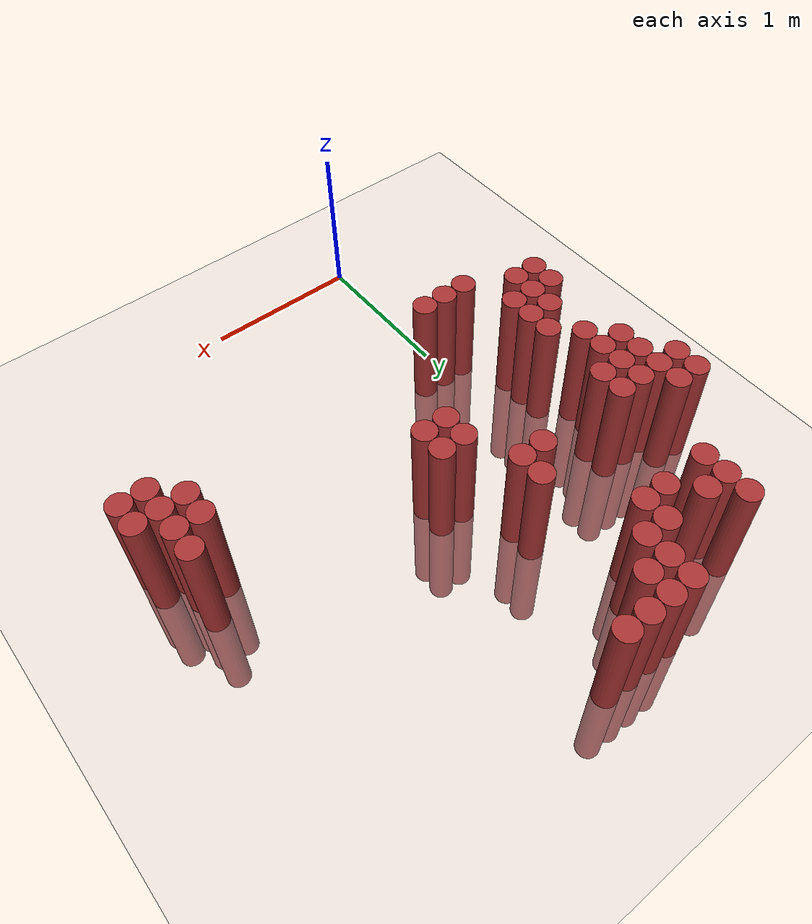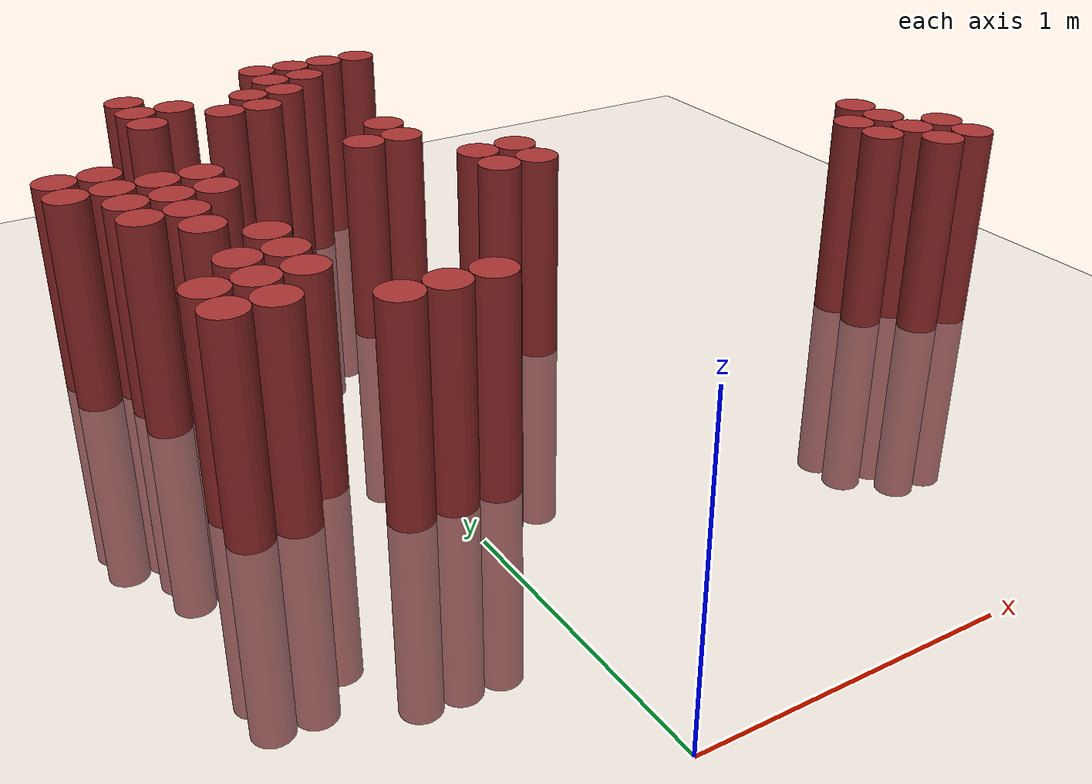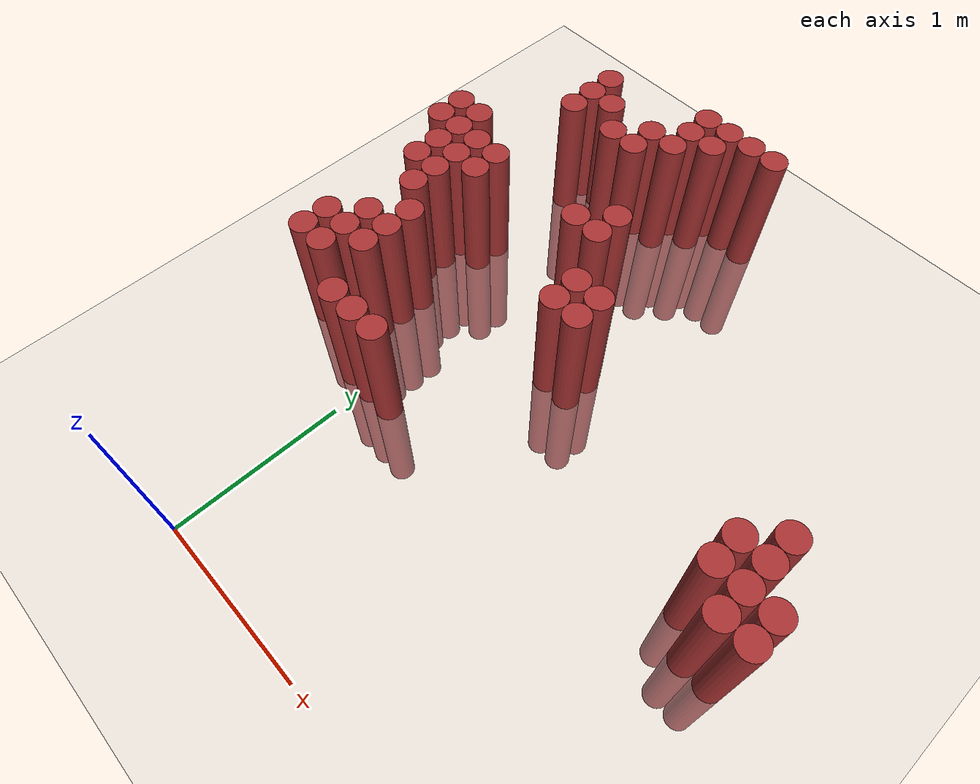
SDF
<sdf version="1.6">
 <world name="default">
  <model name="ground_plane">
   <static>1</static>
   <link name="link">
    <collision name="collision">
     <geometry><plane><normal>0 0 1</normal><size>100 100</size></plane></geometry>
     <surface><friction><ode><mu>100</mu><mu2>50</mu2></ode></friction></surface>
    </collision>
    <visual name="visual">
     <cast_shadows>0</cast_shadows>
     <geometry><plane><normal>0 0 1</normal><size>100 100</size></plane></geometry>
     <material>
      <script><uri>file://media/materials/scripts/gazebo.material</uri><name>Gazebo/Grey</name></script>
     </material>
    </visual>
   </link>
  </model>
  <model name="unit_cylinder_428">
   <static>1</static>
   <pose>-0.725000 2.425000 0.000000 0.000000 0.000000 0.000000</pose>
   <link name="link">
    <inertial>
     <mass>1</mass>
     <inertia><ixx>0.145833</ixx><ixy>0</ixy><ixz>0</ixz><iyy>0.145833</iyy><iyz>0</iyz><izz>0.125</izz></inertia>
    </inertial>
    <collision name="collision">
     <geometry><cylinder><radius>0.075000</radius><length>1.5</length></cylinder></geometry>
    </collision>
    <visual name="visual">
     <geometry><cylinder><radius>0.075000</radius><length>1.5</length></cylinder></geometry>
     <material>
      <ambient>0.648000 0.192000 0.192000 1</ambient>
      <diffuse>0.648000 0.192000 0.192000 1</diffuse>
     </material>
     <material>
      <script><name>Gazebo/Grey</name><uri>file://media/materials/scripts/gazebo.material</uri></script>
     </material>
    </visual>
   </link>
  </model>
  <model name="unit_cylinder_429">
   <static>1</static>
   <pose>-0.725000 2.575000 0.000000 0.000000 0.000000 0.000000</pose>
   <link name="link">
    <inertial>
     <mass>1</mass>
     <inertia><ixx>0.145833</ixx><ixy>0</ixy><ixz>0</ixz><iyy>0.145833</iyy><iyz>0</iyz><izz>0.125</izz></inertia>
    </inertial>
    <collision name="collision">
     <geometry><cylinder><radius>0.075000</radius><length>1.5</length></cylinder></geometry>
    </collision>
    <visual name="visual">
     <geometry><cylinder><radius>0.075000</radius><length>1.5</length></cylinder></geometry>
     <material>
      <ambient>0.648000 0.192000 0.192000 1</ambient>
      <diffuse>0.648000 0.192000 0.192000 1</diffuse>
     </material>
     <material>
      <script><name>Gazebo/Grey</name><uri>file://media/materials/scripts/gazebo.material</uri></script>
     </material>
    </visual>
   </link>
  </model>
  <model name="unit_cylinder_434">
   <static>1</static>
   <pose>-0.575000 1.375000 0.000000 0.000000 0.000000 0.000000</pose>
   <link name="link">
    <inertial>
     <mass>1</mass>
     <inertia><ixx>0.145833</ixx><ixy>0</ixy><ixz>0</ixz><iyy>0.145833</iyy><iyz>0</iyz><izz>0.125</izz></inertia>
    </inertial>
    <collision name="collision">
     <geometry><cylinder><radius>0.075000</radius><length>1.5</length></cylinder></geometry>
    </collision>
    <visual name="visual">
     <geometry><cylinder><radius>0.075000</radius><length>1.5</length></cylinder></geometry>
     <material>
      <ambient>0.648000 0.192000 0.192000 1</ambient>
      <diffuse>0.648000 0.192000 0.192000 1</diffuse>
     </material>
     <material>
      <script><name>Gazebo/Grey</name><uri>file://media/materials/scripts/gazebo.material</uri></script>
     </material>
    </visual>
   </link>
  </model>
  <model name="unit_cylinder_435">
   <static>1</static>
   <pose>-0.575000 1.525000 0.000000 0.000000 0.000000 0.000000</pose>
   <link name="link">
    <inertial>
     <mass>1</mass>
     <inertia><ixx>0.145833</ixx><ixy>0</ixy><ixz>0</ixz><iyy>0.145833</iyy><iyz>0</iyz><izz>0.125</izz></inertia>
    </inertial>
    <collision name="collision">
     <geometry><cylinder><radius>0.075000</radius><length>1.5</length></cylinder></geometry>
    </collision>
    <visual name="visual">
     <geometry><cylinder><radius>0.075000</radius><length>1.5</length></cylinder></geometry>
     <material>
      <ambient>0.648000 0.192000 0.192000 1</ambient>
      <diffuse>0.648000 0.192000 0.192000 1</diffuse>
     </material>
     <material>
      <script><name>Gazebo/Grey</name><uri>file://media/materials/scripts/gazebo.material</uri></script>
     </material>
    </visual>
   </link>
  </model>
  <model name="unit_cylinder_436">
   <static>1</static>
   <pose>-0.575000 2.125000 0.000000 0.000000 0.000000 0.000000</pose>
   <link name="link">
    <inertial>
     <mass>1</mass>
     <inertia><ixx>0.145833</ixx><ixy>0</ixy><ixz>0</ixz><iyy>0.145833</iyy><iyz>0</iyz><izz>0.125</izz></inertia>
    </inertial>
    <collision name="collision">
     <geometry><cylinder><radius>0.075000</radius><length>1.5</length></cylinder></geometry>
    </collision>
    <visual name="visual">
     <geometry><cylinder><radius>0.075000</radius><length>1.5</length></cylinder></geometry>
     <material>
      <ambient>0.648000 0.192000 0.192000 1</ambient>
      <diffuse>0.648000 0.192000 0.192000 1</diffuse>
     </material>
     <material>
      <script><name>Gazebo/Grey</name><uri>file://media/materials/scripts/gazebo.material</uri></script>
     </material>
    </visual>
   </link>
  </model>
  <model name="unit_cylinder_437">
   <static>1</static>
   <pose>-0.575000 2.275000 0.000000 0.000000 0.000000 0.000000</pose>
   <link name="link">
    <inertial>
     <mass>1</mass>
     <inertia><ixx>0.145833</ixx><ixy>0</ixy><ixz>0</ixz><iyy>0.145833</iyy><iyz>0</iyz><izz>0.125</izz></inertia>
    </inertial>
    <collision name="collision">
     <geometry><cylinder><radius>0.075000</radius><length>1.5</length></cylinder></geometry>
    </collision>
    <visual name="visual">
     <geometry><cylinder><radius>0.075000</radius><length>1.5</length></cylinder></geometry>
     <material>
      <ambient>0.648000 0.192000 0.192000 1</ambient>
      <diffuse>0.648000 0.192000 0.192000 1</diffuse>
     </material>
     <material>
      <script><name>Gazebo/Grey</name><uri>file://media/materials/scripts/gazebo.material</uri></script>
     </material>
    </visual>
   </link>
  </model>
  <model name="unit_cylinder_438">
   <static>1</static>
   <pose>-0.575000 2.425000 0.000000 0.000000 0.000000 0.000000</pose>
   <link name="link">
    <inertial>
     <mass>1</mass>
     <inertia><ixx>0.145833</ixx><ixy>0</ixy><ixz>0</ixz><iyy>0.145833</iyy><iyz>0</iyz><izz>0.125</izz></inertia>
    </inertial>
    <collision name="collision">
     <geometry><cylinder><radius>0.075000</radius><length>1.5</length></cylinder></geometry>
    </collision>
    <visual name="visual">
     <geometry><cylinder><radius>0.075000</radius><length>1.5</length></cylinder></geometry>
     <material>
      <ambient>0.648000 0.192000 0.192000 1</ambient>
      <diffuse>0.648000 0.192000 0.192000 1</diffuse>
     </material>
     <material>
      <script><name>Gazebo/Grey</name><uri>file://media/materials/scripts/gazebo.material</uri></script>
     </material>
    </visual>
   </link>
  </model>
  <model name="unit_cylinder_439">
   <static>1</static>
   <pose>-0.575000 2.575000 0.000000 0.000000 0.000000 0.000000</pose>
   <link name="link">
    <inertial>
     <mass>1</mass>
     <inertia><ixx>0.145833</ixx><ixy>0</ixy><ixz>0</ixz><iyy>0.145833</iyy><iyz>0</iyz><izz>0.125</izz></inertia>
    </inertial>
    <collision name="collision">
     <geometry><cylinder><radius>0.075000</radius><length>1.5</length></cylinder></geometry>
    </collision>
    <visual name="visual">
     <geometry><cylinder><radius>0.075000</radius><length>1.5</length></cylinder></geometry>
     <material>
      <ambient>0.648000 0.192000 0.192000 1</ambient>
      <diffuse>0.648000 0.192000 0.192000 1</diffuse>
     </material>
     <material>
      <script><name>Gazebo/Grey</name><uri>file://media/materials/scripts/gazebo.material</uri></script>
     </material>
    </visual>
   </link>
  </model>
  <model name="unit_cylinder_446">
   <static>1</static>
   <pose>-0.425000 1.375000 0.000000 0.000000 0.000000 0.000000</pose>
   <link name="link">
    <inertial>
     <mass>1</mass>
     <inertia><ixx>0.145833</ixx><ixy>0</ixy><ixz>0</ixz><iyy>0.145833</iyy><iyz>0</iyz><izz>0.125</izz></inertia>
    </inertial>
    <collision name="collision">
     <geometry><cylinder><radius>0.075000</radius><length>1.5</length></cylinder></geometry>
    </collision>
    <visual name="visual">
     <geometry><cylinder><radius>0.075000</radius><length>1.5</length></cylinder></geometry>
     <material>
      <ambient>0.648000 0.192000 0.192000 1</ambient>
      <diffuse>0.648000 0.192000 0.192000 1</diffuse>
     </material>
     <material>
      <script><name>Gazebo/Grey</name><uri>file://media/materials/scripts/gazebo.material</uri></script>
     </material>
    </visual>
   </link>
  </model>
  <model name="unit_cylinder_447">
   <static>1</static>
   <pose>-0.425000 1.525000 0.000000 0.000000 0.000000 0.000000</pose>
   <link name="link">
    <inertial>
     <mass>1</mass>
     <inertia><ixx>0.145833</ixx><ixy>0</ixy><ixz>0</ixz><iyy>0.145833</iyy><iyz>0</iyz><izz>0.125</izz></inertia>
    </inertial>
    <collision name="collision">
     <geometry><cylinder><radius>0.075000</radius><length>1.5</length></cylinder></geometry>
    </collision>
    <visual name="visual">
     <geometry><cylinder><radius>0.075000</radius><length>1.5</length></cylinder></geometry>
     <material>
      <ambient>0.648000 0.192000 0.192000 1</ambient>
      <diffuse>0.648000 0.192000 0.192000 1</diffuse>
     </material>
     <material>
      <script><name>Gazebo/Grey</name><uri>file://media/materials/scripts/gazebo.material</uri></script>
     </material>
    </visual>
   </link>
  </model>
  <model name="unit_cylinder_448">
   <static>1</static>
   <pose>-0.425000 1.675000 0.000000 0.000000 0.000000 0.000000</pose>
   <link name="link">
    <inertial>
     <mass>1</mass>
     <inertia><ixx>0.145833</ixx><ixy>0</ixy><ixz>0</ixz><iyy>0.145833</iyy><iyz>0</iyz><izz>0.125</izz></inertia>
    </inertial>
    <collision name="collision">
     <geometry><cylinder><radius>0.075000</radius><length>1.5</length></cylinder></geometry>
    </collision>
    <visual name="visual">
     <geometry><cylinder><radius>0.075000</radius><length>1.5</length></cylinder></geometry>
     <material>
      <ambient>0.648000 0.192000 0.192000 1</ambient>
      <diffuse>0.648000 0.192000 0.192000 1</diffuse>
     </material>
     <material>
      <script><name>Gazebo/Grey</name><uri>file://media/materials/scripts/gazebo.material</uri></script>
     </material>
    </visual>
   </link>
  </model>
  <model name="unit_cylinder_449">
   <static>1</static>
   <pose>-0.425000 1.975000 0.000000 0.000000 0.000000 0.000000</pose>
   <link name="link">
    <inertial>
     <mass>1</mass>
     <inertia><ixx>0.145833</ixx><ixy>0</ixy><ixz>0</ixz><iyy>0.145833</iyy><iyz>0</iyz><izz>0.125</izz></inertia>
    </inertial>
    <collision name="collision">
     <geometry><cylinder><radius>0.075000</radius><length>1.5</length></cylinder></geometry>
    </collision>
    <visual name="visual">
     <geometry><cylinder><radius>0.075000</radius><length>1.5</length></cylinder></geometry>
     <material>
      <ambient>0.648000 0.192000 0.192000 1</ambient>
      <diffuse>0.648000 0.192000 0.192000 1</diffuse>
     </material>
     <material>
      <script><name>Gazebo/Grey</name><uri>file://media/materials/scripts/gazebo.material</uri></script>
     </material>
    </visual>
   </link>
  </model>
  <model name="unit_cylinder_450">
   <static>1</static>
   <pose>-0.425000 2.125000 0.000000 0.000000 0.000000 0.000000</pose>
   <link name="link">
    <inertial>
     <mass>1</mass>
     <inertia><ixx>0.145833</ixx><ixy>0</ixy><ixz>0</ixz><iyy>0.145833</iyy><iyz>0</iyz><izz>0.125</izz></inertia>
    </inertial>
    <collision name="collision">
     <geometry><cylinder><radius>0.075000</radius><length>1.5</length></cylinder></geometry>
    </collision>
    <visual name="visual">
     <geometry><cylinder><radius>0.075000</radius><length>1.5</length></cylinder></geometry>
     <material>
      <ambient>0.648000 0.192000 0.192000 1</ambient>
      <diffuse>0.648000 0.192000 0.192000 1</diffuse>
     </material>
     <material>
      <script><name>Gazebo/Grey</name><uri>file://media/materials/scripts/gazebo.material</uri></script>
     </material>
    </visual>
   </link>
  </model>
  <model name="unit_cylinder_451">
   <static>1</static>
   <pose>-0.425000 2.275000 0.000000 0.000000 0.000000 0.000000</pose>
   <link name="link">
    <inertial>
     <mass>1</mass>
     <inertia><ixx>0.145833</ixx><ixy>0</ixy><ixz>0</ixz><iyy>0.145833</iyy><iyz>0</iyz><izz>0.125</izz></inertia>
    </inertial>
    <collision name="collision">
     <geometry><cylinder><radius>0.075000</radius><length>1.5</length></cylinder></geometry>
    </collision>
    <visual name="visual">
     <geometry><cylinder><radius>0.075000</radius><length>1.5</length></cylinder></geometry>
     <material>
      <ambient>0.648000 0.192000 0.192000 1</ambient>
      <diffuse>0.648000 0.192000 0.192000 1</diffuse>
     </material>
     <material>
      <script><name>Gazebo/Grey</name><uri>file://media/materials/scripts/gazebo.material</uri></script>
     </material>
    </visual>
   </link>
  </model>
  <model name="unit_cylinder_452">
   <static>1</static>
   <pose>-0.425000 2.425000 0.000000 0.000000 0.000000 0.000000</pose>
   <link name="link">
    <inertial>
     <mass>1</mass>
     <inertia><ixx>0.145833</ixx><ixy>0</ixy><ixz>0</ixz><iyy>0.145833</iyy><iyz>0</iyz><izz>0.125</izz></inertia>
    </inertial>
    <collision name="collision">
     <geometry><cylinder><radius>0.075000</radius><length>1.5</length></cylinder></geometry>
    </collision>
    <visual name="visual">
     <geometry><cylinder><radius>0.075000</radius><length>1.5</length></cylinder></geometry>
     <material>
      <ambient>0.648000 0.192000 0.192000 1</ambient>
      <diffuse>0.648000 0.192000 0.192000 1</diffuse>
     </material>
     <material>
      <script><name>Gazebo/Grey</name><uri>file://media/materials/scripts/gazebo.material</uri></script>
     </material>
    </visual>
   </link>
  </model>
  <model name="unit_cylinder_460">
   <static>1</static>
   <pose>-0.275000 1.525000 0.000000 0.000000 0.000000 0.000000</pose>
   <link name="link">
    <inertial>
     <mass>1</mass>
     <inertia><ixx>0.145833</ixx><ixy>0</ixy><ixz>0</ixz><iyy>0.145833</iyy><iyz>0</iyz><izz>0.125</izz></inertia>
    </inertial>
    <collision name="collision">
     <geometry><cylinder><radius>0.075000</radius><length>1.5</length></cylinder></geometry>
    </collision>
    <visual name="visual">
     <geometry><cylinder><radius>0.075000</radius><length>1.5</length></cylinder></geometry>
     <material>
      <ambient>0.648000 0.192000 0.192000 1</ambient>
      <diffuse>0.648000 0.192000 0.192000 1</diffuse>
     </material>
     <material>
      <script><name>Gazebo/Grey</name><uri>file://media/materials/scripts/gazebo.material</uri></script>
     </material>
    </visual>
   </link>
  </model>
  <model name="unit_cylinder_461">
   <static>1</static>
   <pose>-0.275000 1.675000 0.000000 0.000000 0.000000 0.000000</pose>
   <link name="link">
    <inertial>
     <mass>1</mass>
     <inertia><ixx>0.145833</ixx><ixy>0</ixy><ixz>0</ixz><iyy>0.145833</iyy><iyz>0</iyz><izz>0.125</izz></inertia>
    </inertial>
    <collision name="collision">
     <geometry><cylinder><radius>0.075000</radius><length>1.5</length></cylinder></geometry>
    </collision>
    <visual name="visual">
     <geometry><cylinder><radius>0.075000</radius><length>1.5</length></cylinder></geometry>
     <material>
      <ambient>0.648000 0.192000 0.192000 1</ambient>
      <diffuse>0.648000 0.192000 0.192000 1</diffuse>
     </material>
     <material>
      <script><name>Gazebo/Grey</name><uri>file://media/materials/scripts/gazebo.material</uri></script>
     </material>
    </visual>
   </link>
  </model>
  <model name="unit_cylinder_462">
   <static>1</static>
   <pose>-0.275000 1.825000 0.000000 0.000000 0.000000 0.000000</pose>
   <link name="link">
    <inertial>
     <mass>1</mass>
     <inertia><ixx>0.145833</ixx><ixy>0</ixy><ixz>0</ixz><iyy>0.145833</iyy><iyz>0</iyz><izz>0.125</izz></inertia>
    </inertial>
    <collision name="collision">
     <geometry><cylinder><radius>0.075000</radius><length>1.5</length></cylinder></geometry>
    </collision>
    <visual name="visual">
     <geometry><cylinder><radius>0.075000</radius><length>1.5</length></cylinder></geometry>
     <material>
      <ambient>0.648000 0.192000 0.192000 1</ambient>
      <diffuse>0.648000 0.192000 0.192000 1</diffuse>
     </material>
     <material>
      <script><name>Gazebo/Grey</name><uri>file://media/materials/scripts/gazebo.material</uri></script>
     </material>
    </visual>
   </link>
  </model>
  <model name="unit_cylinder_463">
   <static>1</static>
   <pose>-0.275000 2.275000 0.000000 0.000000 0.000000 0.000000</pose>
   <link name="link">
    <inertial>
     <mass>1</mass>
     <inertia><ixx>0.145833</ixx><ixy>0</ixy><ixz>0</ixz><iyy>0.145833</iyy><iyz>0</iyz><izz>0.125</izz></inertia>
    </inertial>
    <collision name="collision">
     <geometry><cylinder><radius>0.075000</radius><length>1.5</length></cylinder></geometry>
    </collision>
    <visual name="visual">
     <geometry><cylinder><radius>0.075000</radius><length>1.5</length></cylinder></geometry>
     <material>
      <ambient>0.648000 0.192000 0.192000 1</ambient>
      <diffuse>0.648000 0.192000 0.192000 1</diffuse>
     </material>
     <material>
      <script><name>Gazebo/Grey</name><uri>file://media/materials/scripts/gazebo.material</uri></script>
     </material>
    </visual>
   </link>
  </model>
  <model name="unit_cylinder_464">
   <static>1</static>
   <pose>-0.275000 2.425000 0.000000 0.000000 0.000000 0.000000</pose>
   <link name="link">
    <inertial>
     <mass>1</mass>
     <inertia><ixx>0.145833</ixx><ixy>0</ixy><ixz>0</ixz><iyy>0.145833</iyy><iyz>0</iyz><izz>0.125</izz></inertia>
    </inertial>
    <collision name="collision">
     <geometry><cylinder><radius>0.075000</radius><length>1.5</length></cylinder></geometry>
    </collision>
    <visual name="visual">
     <geometry><cylinder><radius>0.075000</radius><length>1.5</length></cylinder></geometry>
     <material>
      <ambient>0.648000 0.192000 0.192000 1</ambient>
      <diffuse>0.648000 0.192000 0.192000 1</diffuse>
     </material>
     <material>
      <script><name>Gazebo/Grey</name><uri>file://media/materials/scripts/gazebo.material</uri></script>
     </material>
    </visual>
   </link>
  </model>
  <model name="unit_cylinder_465">
   <static>1</static>
   <pose>-0.275000 3.025000 0.000000 0.000000 0.000000 0.000000</pose>
   <link name="link">
    <inertial>
     <mass>1</mass>
     <inertia><ixx>0.145833</ixx><ixy>0</ixy><ixz>0</ixz><iyy>0.145833</iyy><iyz>0</iyz><izz>0.125</izz></inertia>
    </inertial>
    <collision name="collision">
     <geometry><cylinder><radius>0.075000</radius><length>1.5</length></cylinder></geometry>
    </collision>
    <visual name="visual">
     <geometry><cylinder><radius>0.075000</radius><length>1.5</length></cylinder></geometry>
     <material>
      <ambient>0.648000 0.192000 0.192000 1</ambient>
      <diffuse>0.648000 0.192000 0.192000 1</diffuse>
     </material>
     <material>
      <script><name>Gazebo/Grey</name><uri>file://media/materials/scripts/gazebo.material</uri></script>
     </material>
    </visual>
   </link>
  </model>
  <model name="unit_cylinder_466">
   <static>1</static>
   <pose>-0.275000 3.175000 0.000000 0.000000 0.000000 0.000000</pose>
   <link name="link">
    <inertial>
     <mass>1</mass>
     <inertia><ixx>0.145833</ixx><ixy>0</ixy><ixz>0</ixz><iyy>0.145833</iyy><iyz>0</iyz><izz>0.125</izz></inertia>
    </inertial>
    <collision name="collision">
     <geometry><cylinder><radius>0.075000</radius><length>1.5</length></cylinder></geometry>
    </collision>
    <visual name="visual">
     <geometry><cylinder><radius>0.075000</radius><length>1.5</length></cylinder></geometry>
     <material>
      <ambient>0.648000 0.192000 0.192000 1</ambient>
      <diffuse>0.648000 0.192000 0.192000 1</diffuse>
     </material>
     <material>
      <script><name>Gazebo/Grey</name><uri>file://media/materials/scripts/gazebo.material</uri></script>
     </material>
    </visual>
   </link>
  </model>
  <model name="unit_cylinder_467">
   <static>1</static>
   <pose>-0.275000 3.325000 0.000000 0.000000 0.000000 0.000000</pose>
   <link name="link">
    <inertial>
     <mass>1</mass>
     <inertia><ixx>0.145833</ixx><ixy>0</ixy><ixz>0</ixz><iyy>0.145833</iyy><iyz>0</iyz><izz>0.125</izz></inertia>
    </inertial>
    <collision name="collision">
     <geometry><cylinder><radius>0.075000</radius><length>1.5</length></cylinder></geometry>
    </collision>
    <visual name="visual">
     <geometry><cylinder><radius>0.075000</radius><length>1.5</length></cylinder></geometry>
     <material>
      <ambient>0.648000 0.192000 0.192000 1</ambient>
      <diffuse>0.648000 0.192000 0.192000 1</diffuse>
     </material>
     <material>
      <script><name>Gazebo/Grey</name><uri>file://media/materials/scripts/gazebo.material</uri></script>
     </material>
    </visual>
   </link>
  </model>
  <model name="unit_cylinder_477">
   <static>1</static>
   <pose>-0.125000 1.225000 0.000000 0.000000 0.000000 0.000000</pose>
   <link name="link">
    <inertial>
     <mass>1</mass>
     <inertia><ixx>0.145833</ixx><ixy>0</ixy><ixz>0</ixz><iyy>0.145833</iyy><iyz>0</iyz><izz>0.125</izz></inertia>
    </inertial>
    <collision name="collision">
     <geometry><cylinder><radius>0.075000</radius><length>1.5</length></cylinder></geometry>
    </collision>
    <visual name="visual">
     <geometry><cylinder><radius>0.075000</radius><length>1.5</length></cylinder></geometry>
     <material>
      <ambient>0.648000 0.192000 0.192000 1</ambient>
      <diffuse>0.648000 0.192000 0.192000 1</diffuse>
     </material>
     <material>
      <script><name>Gazebo/Grey</name><uri>file://media/materials/scripts/gazebo.material</uri></script>
     </material>
    </visual>
   </link>
  </model>
  <model name="unit_cylinder_478">
   <static>1</static>
   <pose>-0.125000 3.175000 0.000000 0.000000 0.000000 0.000000</pose>
   <link name="link">
    <inertial>
     <mass>1</mass>
     <inertia><ixx>0.145833</ixx><ixy>0</ixy><ixz>0</ixz><iyy>0.145833</iyy><iyz>0</iyz><izz>0.125</izz></inertia>
    </inertial>
    <collision name="collision">
     <geometry><cylinder><radius>0.075000</radius><length>1.5</length></cylinder></geometry>
    </collision>
    <visual name="visual">
     <geometry><cylinder><radius>0.075000</radius><length>1.5</length></cylinder></geometry>
     <material>
      <ambient>0.648000 0.192000 0.192000 1</ambient>
      <diffuse>0.648000 0.192000 0.192000 1</diffuse>
     </material>
     <material>
      <script><name>Gazebo/Grey</name><uri>file://media/materials/scripts/gazebo.material</uri></script>
     </material>
    </visual>
   </link>
  </model>
  <model name="unit_cylinder_486">
   <static>1</static>
   <pose>0.025000 1.225000 0.000000 0.000000 0.000000 0.000000</pose>
   <link name="link">
    <inertial>
     <mass>1</mass>
     <inertia><ixx>0.145833</ixx><ixy>0</ixy><ixz>0</ixz><iyy>0.145833</iyy><iyz>0</iyz><izz>0.125</izz></inertia>
    </inertial>
    <collision name="collision">
     <geometry><cylinder><radius>0.075000</radius><length>1.5</length></cylinder></geometry>
    </collision>
    <visual name="visual">
     <geometry><cylinder><radius>0.075000</radius><length>1.5</length></cylinder></geometry>
     <material>
      <ambient>0.648000 0.192000 0.192000 1</ambient>
      <diffuse>0.648000 0.192000 0.192000 1</diffuse>
     </material>
     <material>
      <script><name>Gazebo/Grey</name><uri>file://media/materials/scripts/gazebo.material</uri></script>
     </material>
    </visual>
   </link>
  </model>
  <model name="unit_cylinder_487">
   <static>1</static>
   <pose>0.025000 3.025000 0.000000 0.000000 0.000000 0.000000</pose>
   <link name="link">
    <inertial>
     <mass>1</mass>
     <inertia><ixx>0.145833</ixx><ixy>0</ixy><ixz>0</ixz><iyy>0.145833</iyy><iyz>0</iyz><izz>0.125</izz></inertia>
    </inertial>
    <collision name="collision">
     <geometry><cylinder><radius>0.075000</radius><length>1.5</length></cylinder></geometry>
    </collision>
    <visual name="visual">
     <geometry><cylinder><radius>0.075000</radius><length>1.5</length></cylinder></geometry>
     <material>
      <ambient>0.648000 0.192000 0.192000 1</ambient>
      <diffuse>0.648000 0.192000 0.192000 1</diffuse>
     </material>
     <material>
      <script><name>Gazebo/Grey</name><uri>file://media/materials/scripts/gazebo.material</uri></script>
     </material>
    </visual>
   </link>
  </model>
  <model name="unit_cylinder_493">
   <static>1</static>
   <pose>0.175000 1.225000 0.000000 0.000000 0.000000 0.000000</pose>
   <link name="link">
    <inertial>
     <mass>1</mass>
     <inertia><ixx>0.145833</ixx><ixy>0</ixy><ixz>0</ixz><iyy>0.145833</iyy><iyz>0</iyz><izz>0.125</izz></inertia>
    </inertial>
    <collision name="collision">
     <geometry><cylinder><radius>0.075000</radius><length>1.5</length></cylinder></geometry>
    </collision>
    <visual name="visual">
     <geometry><cylinder><radius>0.075000</radius><length>1.5</length></cylinder></geometry>
     <material>
      <ambient>0.648000 0.192000 0.192000 1</ambient>
      <diffuse>0.648000 0.192000 0.192000 1</diffuse>
     </material>
     <material>
      <script><name>Gazebo/Grey</name><uri>file://media/materials/scripts/gazebo.material</uri></script>
     </material>
    </visual>
   </link>
  </model>
  <model name="unit_cylinder_494">
   <static>1</static>
   <pose>0.175000 3.025000 0.000000 0.000000 0.000000 0.000000</pose>
   <link name="link">
    <inertial>
     <mass>1</mass>
     <inertia><ixx>0.145833</ixx><ixy>0</ixy><ixz>0</ixz><iyy>0.145833</iyy><iyz>0</iyz><izz>0.125</izz></inertia>
    </inertial>
    <collision name="collision">
     <geometry><cylinder><radius>0.075000</radius><length>1.5</length></cylinder></geometry>
    </collision>
    <visual name="visual">
     <geometry><cylinder><radius>0.075000</radius><length>1.5</length></cylinder></geometry>
     <material>
      <ambient>0.648000 0.192000 0.192000 1</ambient>
      <diffuse>0.648000 0.192000 0.192000 1</diffuse>
     </material>
     <material>
      <script><name>Gazebo/Grey</name><uri>file://media/materials/scripts/gazebo.material</uri></script>
     </material>
    </visual>
   </link>
  </model>
  <model name="unit_cylinder_495">
   <static>1</static>
   <pose>0.175000 3.175000 0.000000 0.000000 0.000000 0.000000</pose>
   <link name="link">
    <inertial>
     <mass>1</mass>
     <inertia><ixx>0.145833</ixx><ixy>0</ixy><ixz>0</ixz><iyy>0.145833</iyy><iyz>0</iyz><izz>0.125</izz></inertia>
    </inertial>
    <collision name="collision">
     <geometry><cylinder><radius>0.075000</radius><length>1.5</length></cylinder></geometry>
    </collision>
    <visual name="visual">
     <geometry><cylinder><radius>0.075000</radius><length>1.5</length></cylinder></geometry>
     <material>
      <ambient>0.648000 0.192000 0.192000 1</ambient>
      <diffuse>0.648000 0.192000 0.192000 1</diffuse>
     </material>
     <material>
      <script><name>Gazebo/Grey</name><uri>file://media/materials/scripts/gazebo.material</uri></script>
     </material>
    </visual>
   </link>
  </model>
  <model name="unit_cylinder_502">
   <static>1</static>
   <pose>0.325000 2.425000 0.000000 0.000000 0.000000 0.000000</pose>
   <link name="link">
    <inertial>
     <mass>1</mass>
     <inertia><ixx>0.145833</ixx><ixy>0</ixy><ixz>0</ixz><iyy>0.145833</iyy><iyz>0</iyz><izz>0.125</izz></inertia>
    </inertial>
    <collision name="collision">
     <geometry><cylinder><radius>0.075000</radius><length>1.5</length></cylinder></geometry>
    </collision>
    <visual name="visual">
     <geometry><cylinder><radius>0.075000</radius><length>1.5</length></cylinder></geometry>
     <material>
      <ambient>0.648000 0.192000 0.192000 1</ambient>
      <diffuse>0.648000 0.192000 0.192000 1</diffuse>
     </material>
     <material>
      <script><name>Gazebo/Grey</name><uri>file://media/materials/scripts/gazebo.material</uri></script>
     </material>
    </visual>
   </link>
  </model>
  <model name="unit_cylinder_503">
   <static>1</static>
   <pose>0.325000 3.175000 0.000000 0.000000 0.000000 0.000000</pose>
   <link name="link">
    <inertial>
     <mass>1</mass>
     <inertia><ixx>0.145833</ixx><ixy>0</ixy><ixz>0</ixz><iyy>0.145833</iyy><iyz>0</iyz><izz>0.125</izz></inertia>
    </inertial>
    <collision name="collision">
     <geometry><cylinder><radius>0.075000</radius><length>1.5</length></cylinder></geometry>
    </collision>
    <visual name="visual">
     <geometry><cylinder><radius>0.075000</radius><length>1.5</length></cylinder></geometry>
     <material>
      <ambient>0.648000 0.192000 0.192000 1</ambient>
      <diffuse>0.648000 0.192000 0.192000 1</diffuse>
     </material>
     <material>
      <script><name>Gazebo/Grey</name><uri>file://media/materials/scripts/gazebo.material</uri></script>
     </material>
    </visual>
   </link>
  </model>
  <model name="unit_cylinder_504">
   <static>1</static>
   <pose>0.325000 3.325000 0.000000 0.000000 0.000000 0.000000</pose>
   <link name="link">
    <inertial>
     <mass>1</mass>
     <inertia><ixx>0.145833</ixx><ixy>0</ixy><ixz>0</ixz><iyy>0.145833</iyy><iyz>0</iyz><izz>0.125</izz></inertia>
    </inertial>
    <collision name="collision">
     <geometry><cylinder><radius>0.075000</radius><length>1.5</length></cylinder></geometry>
    </collision>
    <visual name="visual">
     <geometry><cylinder><radius>0.075000</radius><length>1.5</length></cylinder></geometry>
     <material>
      <ambient>0.648000 0.192000 0.192000 1</ambient>
      <diffuse>0.648000 0.192000 0.192000 1</diffuse>
     </material>
     <material>
      <script><name>Gazebo/Grey</name><uri>file://media/materials/scripts/gazebo.material</uri></script>
     </material>
    </visual>
   </link>
  </model>
  <model name="unit_cylinder_505">
   <static>1</static>
   <pose>0.325000 3.475000 0.000000 0.000000 0.000000 0.000000</pose>
   <link name="link">
    <inertial>
     <mass>1</mass>
     <inertia><ixx>0.145833</ixx><ixy>0</ixy><ixz>0</ixz><iyy>0.145833</iyy><iyz>0</iyz><izz>0.125</izz></inertia>
    </inertial>
    <collision name="collision">
     <geometry><cylinder><radius>0.075000</radius><length>1.5</length></cylinder></geometry>
    </collision>
    <visual name="visual">
     <geometry><cylinder><radius>0.075000</radius><length>1.5</length></cylinder></geometry>
     <material>
      <ambient>0.648000 0.192000 0.192000 1</ambient>
      <diffuse>0.648000 0.192000 0.192000 1</diffuse>
     </material>
     <material>
      <script><name>Gazebo/Grey</name><uri>file://media/materials/scripts/gazebo.material</uri></script>
     </material>
    </visual>
   </link>
  </model>
  <model name="unit_cylinder_513">
   <static>1</static>
   <pose>0.475000 2.425000 0.000000 0.000000 0.000000 0.000000</pose>
   <link name="link">
    <inertial>
     <mass>1</mass>
     <inertia><ixx>0.145833</ixx><ixy>0</ixy><ixz>0</ixz><iyy>0.145833</iyy><iyz>0</iyz><izz>0.125</izz></inertia>
    </inertial>
    <collision name="collision">
     <geometry><cylinder><radius>0.075000</radius><length>1.5</length></cylinder></geometry>
    </collision>
    <visual name="visual">
     <geometry><cylinder><radius>0.075000</radius><length>1.5</length></cylinder></geometry>
     <material>
      <ambient>0.648000 0.192000 0.192000 1</ambient>
      <diffuse>0.648000 0.192000 0.192000 1</diffuse>
     </material>
     <material>
      <script><name>Gazebo/Grey</name><uri>file://media/materials/scripts/gazebo.material</uri></script>
     </material>
    </visual>
   </link>
  </model>
  <model name="unit_cylinder_514">
   <static>1</static>
   <pose>0.475000 2.575000 0.000000 0.000000 0.000000 0.000000</pose>
   <link name="link">
    <inertial>
     <mass>1</mass>
     <inertia><ixx>0.145833</ixx><ixy>0</ixy><ixz>0</ixz><iyy>0.145833</iyy><iyz>0</iyz><izz>0.125</izz></inertia>
    </inertial>
    <collision name="collision">
     <geometry><cylinder><radius>0.075000</radius><length>1.5</length></cylinder></geometry>
    </collision>
    <visual name="visual">
     <geometry><cylinder><radius>0.075000</radius><length>1.5</length></cylinder></geometry>
     <material>
      <ambient>0.648000 0.192000 0.192000 1</ambient>
      <diffuse>0.648000 0.192000 0.192000 1</diffuse>
     </material>
     <material>
      <script><name>Gazebo/Grey</name><uri>file://media/materials/scripts/gazebo.material</uri></script>
     </material>
    </visual>
   </link>
  </model>
  <model name="unit_cylinder_515">
   <static>1</static>
   <pose>0.475000 3.325000 0.000000 0.000000 0.000000 0.000000</pose>
   <link name="link">
    <inertial>
     <mass>1</mass>
     <inertia><ixx>0.145833</ixx><ixy>0</ixy><ixz>0</ixz><iyy>0.145833</iyy><iyz>0</iyz><izz>0.125</izz></inertia>
    </inertial>
    <collision name="collision">
     <geometry><cylinder><radius>0.075000</radius><length>1.5</length></cylinder></geometry>
    </collision>
    <visual name="visual">
     <geometry><cylinder><radius>0.075000</radius><length>1.5</length></cylinder></geometry>
     <material>
      <ambient>0.648000 0.192000 0.192000 1</ambient>
      <diffuse>0.648000 0.192000 0.192000 1</diffuse>
     </material>
     <material>
      <script><name>Gazebo/Grey</name><uri>file://media/materials/scripts/gazebo.material</uri></script>
     </material>
    </visual>
   </link>
  </model>
  <model name="unit_cylinder_516">
   <static>1</static>
   <pose>0.475000 3.475000 0.000000 0.000000 0.000000 0.000000</pose>
   <link name="link">
    <inertial>
     <mass>1</mass>
     <inertia><ixx>0.145833</ixx><ixy>0</ixy><ixz>0</ixz><iyy>0.145833</iyy><iyz>0</iyz><izz>0.125</izz></inertia>
    </inertial>
    <collision name="collision">
     <geometry><cylinder><radius>0.075000</radius><length>1.5</length></cylinder></geometry>
    </collision>
    <visual name="visual">
     <geometry><cylinder><radius>0.075000</radius><length>1.5</length></cylinder></geometry>
     <material>
      <ambient>0.648000 0.192000 0.192000 1</ambient>
      <diffuse>0.648000 0.192000 0.192000 1</diffuse>
     </material>
     <material>
      <script><name>Gazebo/Grey</name><uri>file://media/materials/scripts/gazebo.material</uri></script>
     </material>
    </visual>
   </link>
  </model>
  <model name="unit_cylinder_524">
   <static>1</static>
   <pose>0.625000 1.975000 0.000000 0.000000 0.000000 0.000000</pose>
   <link name="link">
    <inertial>
     <mass>1</mass>
     <inertia><ixx>0.145833</ixx><ixy>0</ixy><ixz>0</ixz><iyy>0.145833</iyy><iyz>0</iyz><izz>0.125</izz></inertia>
    </inertial>
    <collision name="collision">
     <geometry><cylinder><radius>0.075000</radius><length>1.5</length></cylinder></geometry>
    </collision>
    <visual name="visual">
     <geometry><cylinder><radius>0.075000</radius><length>1.5</length></cylinder></geometry>
     <material>
      <ambient>0.648000 0.192000 0.192000 1</ambient>
      <diffuse>0.648000 0.192000 0.192000 1</diffuse>
     </material>
     <material>
      <script><name>Gazebo/Grey</name><uri>file://media/materials/scripts/gazebo.material</uri></script>
     </material>
    </visual>
   </link>
  </model>
  <model name="unit_cylinder_525">
   <static>1</static>
   <pose>0.625000 2.125000 0.000000 0.000000 0.000000 0.000000</pose>
   <link name="link">
    <inertial>
     <mass>1</mass>
     <inertia><ixx>0.145833</ixx><ixy>0</ixy><ixz>0</ixz><iyy>0.145833</iyy><iyz>0</iyz><izz>0.125</izz></inertia>
    </inertial>
    <collision name="collision">
     <geometry><cylinder><radius>0.075000</radius><length>1.5</length></cylinder></geometry>
    </collision>
    <visual name="visual">
     <geometry><cylinder><radius>0.075000</radius><length>1.5</length></cylinder></geometry>
     <material>
      <ambient>0.648000 0.192000 0.192000 1</ambient>
      <diffuse>0.648000 0.192000 0.192000 1</diffuse>
     </material>
     <material>
      <script><name>Gazebo/Grey</name><uri>file://media/materials/scripts/gazebo.material</uri></script>
     </material>
    </visual>
   </link>
  </model>
  <model name="unit_cylinder_526">
   <static>1</static>
   <pose>0.625000 3.475000 0.000000 0.000000 0.000000 0.000000</pose>
   <link name="link">
    <inertial>
     <mass>1</mass>
     <inertia><ixx>0.145833</ixx><ixy>0</ixy><ixz>0</ixz><iyy>0.145833</iyy><iyz>0</iyz><izz>0.125</izz></inertia>
    </inertial>
    <collision name="collision">
     <geometry><cylinder><radius>0.075000</radius><length>1.5</length></cylinder></geometry>
    </collision>
    <visual name="visual">
     <geometry><cylinder><radius>0.075000</radius><length>1.5</length></cylinder></geometry>
     <material>
      <ambient>0.648000 0.192000 0.192000 1</ambient>
      <diffuse>0.648000 0.192000 0.192000 1</diffuse>
     </material>
     <material>
      <script><name>Gazebo/Grey</name><uri>file://media/materials/scripts/gazebo.material</uri></script>
     </material>
    </visual>
   </link>
  </model>
  <model name="unit_cylinder_531">
   <static>1</static>
   <pose>0.775000 1.975000 0.000000 0.000000 0.000000 0.000000</pose>
   <link name="link">
    <inertial>
     <mass>1</mass>
     <inertia><ixx>0.145833</ixx><ixy>0</ixy><ixz>0</ixz><iyy>0.145833</iyy><iyz>0</iyz><izz>0.125</izz></inertia>
    </inertial>
    <collision name="collision">
     <geometry><cylinder><radius>0.075000</radius><length>1.5</length></cylinder></geometry>
    </collision>
    <visual name="visual">
     <geometry><cylinder><radius>0.075000</radius><length>1.5</length></cylinder></geometry>
     <material>
      <ambient>0.648000 0.192000 0.192000 1</ambient>
      <diffuse>0.648000 0.192000 0.192000 1</diffuse>
     </material>
     <material>
      <script><name>Gazebo/Grey</name><uri>file://media/materials/scripts/gazebo.material</uri></script>
     </material>
    </visual>
   </link>
  </model>
  <model name="unit_cylinder_532">
   <static>1</static>
   <pose>0.775000 2.125000 0.000000 0.000000 0.000000 0.000000</pose>
   <link name="link">
    <inertial>
     <mass>1</mass>
     <inertia><ixx>0.145833</ixx><ixy>0</ixy><ixz>0</ixz><iyy>0.145833</iyy><iyz>0</iyz><izz>0.125</izz></inertia>
    </inertial>
    <collision name="collision">
     <geometry><cylinder><radius>0.075000</radius><length>1.5</length></cylinder></geometry>
    </collision>
    <visual name="visual">
     <geometry><cylinder><radius>0.075000</radius><length>1.5</length></cylinder></geometry>
     <material>
      <ambient>0.648000 0.192000 0.192000 1</ambient>
      <diffuse>0.648000 0.192000 0.192000 1</diffuse>
     </material>
     <material>
      <script><name>Gazebo/Grey</name><uri>file://media/materials/scripts/gazebo.material</uri></script>
     </material>
    </visual>
   </link>
  </model>
  <model name="unit_cylinder_533">
   <static>1</static>
   <pose>0.775000 3.475000 0.000000 0.000000 0.000000 0.000000</pose>
   <link name="link">
    <inertial>
     <mass>1</mass>
     <inertia><ixx>0.145833</ixx><ixy>0</ixy><ixz>0</ixz><iyy>0.145833</iyy><iyz>0</iyz><izz>0.125</izz></inertia>
    </inertial>
    <collision name="collision">
     <geometry><cylinder><radius>0.075000</radius><length>1.5</length></cylinder></geometry>
    </collision>
    <visual name="visual">
     <geometry><cylinder><radius>0.075000</radius><length>1.5</length></cylinder></geometry>
     <material>
      <ambient>0.648000 0.192000 0.192000 1</ambient>
      <diffuse>0.648000 0.192000 0.192000 1</diffuse>
     </material>
     <material>
      <script><name>Gazebo/Grey</name><uri>file://media/materials/scripts/gazebo.material</uri></script>
     </material>
    </visual>
   </link>
  </model>
  <model name="unit_cylinder_550">
   <static>1</static>
   <pose>1.975000 1.525000 0.000000 0.000000 0.000000 0.000000</pose>
   <link name="link">
    <inertial>
     <mass>1</mass>
     <inertia><ixx>0.145833</ixx><ixy>0</ixy><ixz>0</ixz><iyy>0.145833</iyy><iyz>0</iyz><izz>0.125</izz></inertia>
    </inertial>
    <collision name="collision">
     <geometry><cylinder><radius>0.075000</radius><length>1.5</length></cylinder></geometry>
    </collision>
    <visual name="visual">
     <geometry><cylinder><radius>0.075000</radius><length>1.5</length></cylinder></geometry>
     <material>
      <ambient>0.648000 0.192000 0.192000 1</ambient>
      <diffuse>0.648000 0.192000 0.192000 1</diffuse>
     </material>
     <material>
      <script><name>Gazebo/Grey</name><uri>file://media/materials/scripts/gazebo.material</uri></script>
     </material>
    </visual>
   </link>
  </model>
  <model name="unit_cylinder_551">
   <static>1</static>
   <pose>1.975000 1.675000 0.000000 0.000000 0.000000 0.000000</pose>
   <link name="link">
    <inertial>
     <mass>1</mass>
     <inertia><ixx>0.145833</ixx><ixy>0</ixy><ixz>0</ixz><iyy>0.145833</iyy><iyz>0</iyz><izz>0.125</izz></inertia>
    </inertial>
    <collision name="collision">
     <geometry><cylinder><radius>0.075000</radius><length>1.5</length></cylinder></geometry>
    </collision>
    <visual name="visual">
     <geometry><cylinder><radius>0.075000</radius><length>1.5</length></cylinder></geometry>
     <material>
      <ambient>0.648000 0.192000 0.192000 1</ambient>
      <diffuse>0.648000 0.192000 0.192000 1</diffuse>
     </material>
     <material>
      <script><name>Gazebo/Grey</name><uri>file://media/materials/scripts/gazebo.material</uri></script>
     </material>
    </visual>
   </link>
  </model>
  <model name="unit_cylinder_553">
   <static>1</static>
   <pose>2.125000 1.375000 0.000000 0.000000 0.000000 0.000000</pose>
   <link name="link">
    <inertial>
     <mass>1</mass>
     <inertia><ixx>0.145833</ixx><ixy>0</ixy><ixz>0</ixz><iyy>0.145833</iyy><iyz>0</iyz><izz>0.125</izz></inertia>
    </inertial>
    <collision name="collision">
     <geometry><cylinder><radius>0.075000</radius><length>1.5</length></cylinder></geometry>
    </collision>
    <visual name="visual">
     <geometry><cylinder><radius>0.075000</radius><length>1.5</length></cylinder></geometry>
     <material>
      <ambient>0.648000 0.192000 0.192000 1</ambient>
      <diffuse>0.648000 0.192000 0.192000 1</diffuse>
     </material>
     <material>
      <script><name>Gazebo/Grey</name><uri>file://media/materials/scripts/gazebo.material</uri></script>
     </material>
    </visual>
   </link>
  </model>
  <model name="unit_cylinder_554">
   <static>1</static>
   <pose>2.125000 1.525000 0.000000 0.000000 0.000000 0.000000</pose>
   <link name="link">
    <inertial>
     <mass>1</mass>
     <inertia><ixx>0.145833</ixx><ixy>0</ixy><ixz>0</ixz><iyy>0.145833</iyy><iyz>0</iyz><izz>0.125</izz></inertia>
    </inertial>
    <collision name="collision">
     <geometry><cylinder><radius>0.075000</radius><length>1.5</length></cylinder></geometry>
    </collision>
    <visual name="visual">
     <geometry><cylinder><radius>0.075000</radius><length>1.5</length></cylinder></geometry>
     <material>
      <ambient>0.648000 0.192000 0.192000 1</ambient>
      <diffuse>0.648000 0.192000 0.192000 1</diffuse>
     </material>
     <material>
      <script><name>Gazebo/Grey</name><uri>file://media/materials/scripts/gazebo.material</uri></script>
     </material>
    </visual>
   </link>
  </model>
  <model name="unit_cylinder_555">
   <static>1</static>
   <pose>2.125000 1.675000 0.000000 0.000000 0.000000 0.000000</pose>
   <link name="link">
    <inertial>
     <mass>1</mass>
     <inertia><ixx>0.145833</ixx><ixy>0</ixy><ixz>0</ixz><iyy>0.145833</iyy><iyz>0</iyz><izz>0.125</izz></inertia>
    </inertial>
    <collision name="collision">
     <geometry><cylinder><radius>0.075000</radius><length>1.5</length></cylinder></geometry>
    </collision>
    <visual name="visual">
     <geometry><cylinder><radius>0.075000</radius><length>1.5</length></cylinder></geometry>
     <material>
      <ambient>0.648000 0.192000 0.192000 1</ambient>
      <diffuse>0.648000 0.192000 0.192000 1</diffuse>
     </material>
     <material>
      <script><name>Gazebo/Grey</name><uri>file://media/materials/scripts/gazebo.material</uri></script>
     </material>
    </visual>
   </link>
  </model>
  <model name="unit_cylinder_556">
   <static>1</static>
   <pose>2.125000 1.825000 0.000000 0.000000 0.000000 0.000000</pose>
   <link name="link">
    <inertial>
     <mass>1</mass>
     <inertia><ixx>0.145833</ixx><ixy>0</ixy><ixz>0</ixz><iyy>0.145833</iyy><iyz>0</iyz><izz>0.125</izz></inertia>
    </inertial>
    <collision name="collision">
     <geometry><cylinder><radius>0.075000</radius><length>1.5</length></cylinder></geometry>
    </collision>
    <visual name="visual">
     <geometry><cylinder><radius>0.075000</radius><length>1.5</length></cylinder></geometry>
     <material>
      <ambient>0.648000 0.192000 0.192000 1</ambient>
      <diffuse>0.648000 0.192000 0.192000 1</diffuse>
     </material>
     <material>
      <script><name>Gazebo/Grey</name><uri>file://media/materials/scripts/gazebo.material</uri></script>
     </material>
    </visual>
   </link>
  </model>
  <model name="unit_cylinder_558">
   <static>1</static>
   <pose>2.275000 1.375000 0.000000 0.000000 0.000000 0.000000</pose>
   <link name="link">
    <inertial>
     <mass>1</mass>
     <inertia><ixx>0.145833</ixx><ixy>0</ixy><ixz>0</ixz><iyy>0.145833</iyy><iyz>0</iyz><izz>0.125</izz></inertia>
    </inertial>
    <collision name="collision">
     <geometry><cylinder><radius>0.075000</radius><length>1.5</length></cylinder></geometry>
    </collision>
    <visual name="visual">
     <geometry><cylinder><radius>0.075000</radius><length>1.5</length></cylinder></geometry>
     <material>
      <ambient>0.648000 0.192000 0.192000 1</ambient>
      <diffuse>0.648000 0.192000 0.192000 1</diffuse>
     </material>
     <material>
      <script><name>Gazebo/Grey</name><uri>file://media/materials/scripts/gazebo.material</uri></script>
     </material>
    </visual>
   </link>
  </model>
  <model name="unit_cylinder_559">
   <static>1</static>
   <pose>2.275000 1.525000 0.000000 0.000000 0.000000 0.000000</pose>
   <link name="link">
    <inertial>
     <mass>1</mass>
     <inertia><ixx>0.145833</ixx><ixy>0</ixy><ixz>0</ixz><iyy>0.145833</iyy><iyz>0</iyz><izz>0.125</izz></inertia>
    </inertial>
    <collision name="collision">
     <geometry><cylinder><radius>0.075000</radius><length>1.5</length></cylinder></geometry>
    </collision>
    <visual name="visual">
     <geometry><cylinder><radius>0.075000</radius><length>1.5</length></cylinder></geometry>
     <material>
      <ambient>0.648000 0.192000 0.192000 1</ambient>
      <diffuse>0.648000 0.192000 0.192000 1</diffuse>
     </material>
     <material>
      <script><name>Gazebo/Grey</name><uri>file://media/materials/scripts/gazebo.material</uri></script>
     </material>
    </visual>
   </link>
  </model>
 </world>
</sdf>
